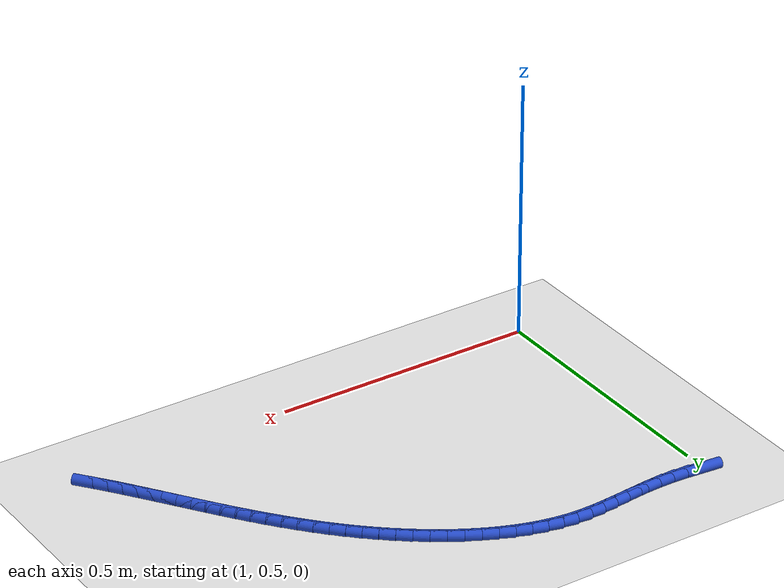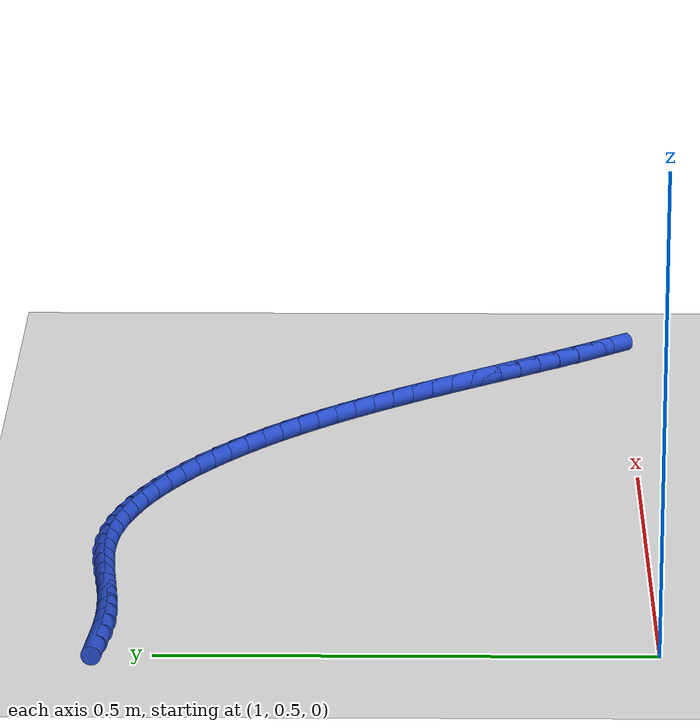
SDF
<sdf version="1.6">
 <world name="default">
  <model name="ground_plane">
   <static>1</static>
   <link name="link">
    <collision name="collision">
     <geometry><plane><normal>0 0 1</normal><size>100 100</size></plane></geometry>
     <surface><friction><ode><mu>100</mu><mu2>50</mu2></ode></friction></surface>
    </collision>
    <visual name="visual">
     <cast_shadows>0</cast_shadows>
     <geometry><plane><normal>0 0 1</normal><size>100 100</size></plane></geometry>
     <material>
      <script><uri>file://media/materials/scripts/gazebo.material</uri><name>Gazebo/WhiteGlow</name></script>
     </material>
    </visual>
   </link>
  </model>
  <model name="line">
   <link name="link_59">
    <pose>1.0150206106187034 1.0552837076525767 0.01 0 1.57 -0.09621631643686032</pose>
    <collision name="collision">
     <geometry><cylinder><radius>0.01</radius><length>0.08</length></cylinder></geometry>
    </collision>
    <visual name="visual">
     <material>
      <script><name>Gazebo/Blue</name><uri>file://media/materials/scripts/gazebo.material</uri></script>
     </material>
     <geometry><cylinder><radius>0.01</radius><length>0.08</length></cylinder></geometry>
    </visual>
   </link>
   <link name="link_60">
    <pose>1.0439334622546377 1.05249320314544 0.01 0 1.57 -0.05836338524251697</pose>
    <collision name="collision">
     <geometry><cylinder><radius>0.01</radius><length>0.08</length></cylinder></geometry>
    </collision>
    <visual name="visual">
     <material>
      <script><name>Gazebo/Blue</name><uri>file://media/materials/scripts/gazebo.material</uri></script>
     </material>
     <geometry><cylinder><radius>0.01</radius><length>0.08</length></cylinder></geometry>
    </visual>
   </link>
   <link name="link_61">
    <pose>1.0726639845456978 1.0508144861090285 0.01 0 1.57 -0.005816245046619494</pose>
    <collision name="collision">
     <geometry><cylinder><radius>0.01</radius><length>0.08</length></cylinder></geometry>
    </collision>
    <visual name="visual">
     <material>
      <script><name>Gazebo/Blue</name><uri>file://media/materials/scripts/gazebo.material</uri></script>
     </material>
     <geometry><cylinder><radius>0.01</radius><length>0.08</length></cylinder></geometry>
    </visual>
   </link>
   <link name="link_62">
    <pose>1.1010866167589104 1.050649171251073 0.01 0 1.57 0.04379226199682296</pose>
    <collision name="collision">
     <geometry><cylinder><radius>0.01</radius><length>0.08</length></cylinder></geometry>
    </collision>
    <visual name="visual">
     <material>
      <script><name>Gazebo/Blue</name><uri>file://media/materials/scripts/gazebo.material</uri></script>
     </material>
     <geometry><cylinder><radius>0.01</radius><length>0.08</length></cylinder></geometry>
    </visual>
   </link>
   <link name="link_63">
    <pose>1.1291666104742513 1.0518796443782632 0.01 0 1.57 0.07562860127090518</pose>
    <collision name="collision">
     <geometry><cylinder><radius>0.01</radius><length>0.08</length></cylinder></geometry>
    </collision>
    <visual name="visual">
     <material>
      <script><name>Gazebo/Blue</name><uri>file://media/materials/scripts/gazebo.material</uri></script>
     </material>
     <geometry><cylinder><radius>0.01</radius><length>0.08</length></cylinder></geometry>
    </visual>
   </link>
   <link name="link_64">
    <pose>1.1569399072762656 1.0539841137998145 0.01 0 1.57 0.08869842491510196</pose>
    <collision name="collision">
     <geometry><cylinder><radius>0.01</radius><length>0.08</length></cylinder></geometry>
    </collision>
    <visual name="visual">
     <material>
      <script><name>Gazebo/Blue</name><uri>file://media/materials/scripts/gazebo.material</uri></script>
     </material>
     <geometry><cylinder><radius>0.01</radius><length>0.08</length></cylinder></geometry>
    </visual>
   </link>
   <link name="link_65">
    <pose>1.1844443129211908 1.0564301292282445 0.01 0 1.57 0.08249794219095717</pose>
    <collision name="collision">
     <geometry><cylinder><radius>0.01</radius><length>0.08</length></cylinder></geometry>
    </collision>
    <visual name="visual">
     <material>
      <script><name>Gazebo/Blue</name><uri>file://media/materials/scripts/gazebo.material</uri></script>
     </material>
     <geometry><cylinder><radius>0.01</radius><length>0.08</length></cylinder></geometry>
    </visual>
   </link>
   <link name="link_66">
    <pose>1.2117176331652648 1.0586852403760707 0.01 0 1.57 0.056503833117821985</pose>
    <collision name="collision">
     <geometry><cylinder><radius>0.01</radius><length>0.08</length></cylinder></geometry>
    </collision>
    <visual name="visual">
     <material>
      <script><name>Gazebo/Blue</name><uri>file://media/materials/scripts/gazebo.material</uri></script>
     </material>
     <geometry><cylinder><radius>0.01</radius><length>0.08</length></cylinder></geometry>
    </visual>
   </link>
   <link name="link_67">
    <pose>1.2387976737647237 1.0602169969558104 0.01 0 1.57 0.010248709494177286</pose>
    <collision name="collision">
     <geometry><cylinder><radius>0.01</radius><length>0.08</length></cylinder></geometry>
    </collision>
    <visual name="visual">
     <material>
      <script><name>Gazebo/Blue</name><uri>file://media/materials/scripts/gazebo.material</uri></script>
     </material>
     <geometry><cylinder><radius>0.01</radius><length>0.08</length></cylinder></geometry>
    </visual>
   </link>
   <link name="link_68">
    <pose>1.2657222404758064 1.0604929486799826 0.01 0 1.57 -0.05632960257344808</pose>
    <collision name="collision">
     <geometry><cylinder><radius>0.01</radius><length>0.08</length></cylinder></geometry>
    </collision>
    <visual name="visual">
     <material>
      <script><name>Gazebo/Blue</name><uri>file://media/materials/scripts/gazebo.material</uri></script>
     </material>
     <geometry><cylinder><radius>0.01</radius><length>0.08</length></cylinder></geometry>
    </visual>
   </link>
   <link name="link_69">
    <pose>1.2925290333305801 1.0589813335568157 0.01 0 1.57 -0.13575664744811794</pose>
    <collision name="collision">
     <geometry><cylinder><radius>0.01</radius><length>0.08</length></cylinder></geometry>
    </collision>
    <visual name="visual">
     <material>
      <script><name>Gazebo/Blue</name><uri>file://media/materials/scripts/gazebo.material</uri></script>
     </material>
     <geometry><cylinder><radius>0.01</radius><length>0.08</length></cylinder></geometry>
    </visual>
   </link>
   <link name="link_70">
    <pose>1.3192274863995046 1.055334409391231 0.01 0 1.57 -0.2115682908477505</pose>
    <collision name="collision">
     <geometry><cylinder><radius>0.01</radius><length>0.08</length></cylinder></geometry>
    </collision>
    <visual name="visual">
     <material>
      <script><name>Gazebo/Blue</name><uri>file://media/materials/scripts/gazebo.material</uri></script>
     </material>
     <geometry><cylinder><radius>0.01</radius><length>0.08</length></cylinder></geometry>
    </visual>
   </link>
   <link name="link_71">
    <pose>1.3457608187836796 1.0496355130849007 0.01 0 1.57 -0.2814968620393931</pose>
    <collision name="collision">
     <geometry><cylinder><radius>0.01</radius><length>0.08</length></cylinder></geometry>
    </collision>
    <visual name="visual">
     <material>
      <script><name>Gazebo/Blue</name><uri>file://media/materials/scripts/gazebo.material</uri></script>
     </material>
     <geometry><cylinder><radius>0.01</radius><length>0.08</length></cylinder></geometry>
    </visual>
   </link>
   <link name="link_72">
    <pose>1.3720627808383283 1.0420296258845778 0.01 0 1.57 -0.34577118275028335</pose>
    <collision name="collision">
     <geometry><cylinder><radius>0.01</radius><length>0.08</length></cylinder></geometry>
    </collision>
    <visual name="visual">
     <material>
      <script><name>Gazebo/Blue</name><uri>file://media/materials/scripts/gazebo.material</uri></script>
     </material>
     <geometry><cylinder><radius>0.01</radius><length>0.08</length></cylinder></geometry>
    </visual>
   </link>
   <link name="link_73">
    <pose>1.3980671229186736 1.0326617290370155 0.01 0 1.57 -0.4047649698173029</pose>
    <collision name="collision">
     <geometry><cylinder><radius>0.01</radius><length>0.08</length></cylinder></geometry>
    </collision>
    <visual name="visual">
     <material>
      <script><name>Gazebo/Blue</name><uri>file://media/materials/scripts/gazebo.material</uri></script>
     </material>
     <geometry><cylinder><radius>0.01</radius><length>0.08</length></cylinder></geometry>
    </visual>
   </link>
   <link name="link_74">
    <pose>1.423707595379938 1.0216768037889663 0.01 0 1.57 -0.4589335959532262</pose>
    <collision name="collision">
     <geometry><cylinder><radius>0.01</radius><length>0.08</length></cylinder></geometry>
    </collision>
    <visual name="visual">
     <material>
      <script><name>Gazebo/Blue</name><uri>file://media/materials/scripts/gazebo.material</uri></script>
     </material>
     <geometry><cylinder><radius>0.01</radius><length>0.08</length></cylinder></geometry>
    </visual>
   </link>
   <link name="link_75">
    <pose>1.4489179485773436 1.0092198313871834 0.01 0 1.57 -0.5087680752783025</pose>
    <collision name="collision">
     <geometry><cylinder><radius>0.01</radius><length>0.08</length></cylinder></geometry>
    </collision>
    <visual name="visual">
     <material>
      <script><name>Gazebo/Blue</name><uri>file://media/materials/scripts/gazebo.material</uri></script>
     </material>
     <geometry><cylinder><radius>0.01</radius><length>0.08</length></cylinder></geometry>
    </visual>
   </link>
   <link name="link_76">
    <pose>1.4736319328661136 0.9954357930784198 0.01 0 1.57 -0.5547646862628934</pose>
    <collision name="collision">
     <geometry><cylinder><radius>0.01</radius><length>0.08</length></cylinder></geometry>
    </collision>
    <visual name="visual">
     <material>
      <script><name>Gazebo/Blue</name><uri>file://media/materials/scripts/gazebo.material</uri></script>
     </material>
     <geometry><cylinder><radius>0.01</radius><length>0.08</length></cylinder></geometry>
    </visual>
   </link>
   <link name="link_77">
    <pose>1.49778329860147 0.980469670109428 0.01 0 1.57 -0.5974070934406732</pose>
    <collision name="collision">
     <geometry><cylinder><radius>0.01</radius><length>0.08</length></cylinder></geometry>
    </collision>
    <visual name="visual">
     <material>
      <script><name>Gazebo/Blue</name><uri>file://media/materials/scripts/gazebo.material</uri></script>
     </material>
     <geometry><cylinder><radius>0.01</radius><length>0.08</length></cylinder></geometry>
    </visual>
   </link>
   <link name="link_78">
    <pose>1.5213057961386367 0.9644664437269611 0.01 0 1.57 -0.6371577218860998</pose>
    <collision name="collision">
     <geometry><cylinder><radius>0.01</radius><length>0.08</length></cylinder></geometry>
    </collision>
    <visual name="visual">
     <material>
      <script><name>Gazebo/Blue</name><uri>file://media/materials/scripts/gazebo.material</uri></script>
     </material>
     <geometry><cylinder><radius>0.01</radius><length>0.08</length></cylinder></geometry>
    </visual>
   </link>
   <link name="link_79">
    <pose>1.544133175832835 0.947571095177772 0.01 0 1.57 -0.6744556936210766</pose>
    <collision name="collision">
     <geometry><cylinder><radius>0.01</radius><length>0.08</length></cylinder></geometry>
    </collision>
    <visual name="visual">
     <material>
      <script><name>Gazebo/Blue</name><uri>file://media/materials/scripts/gazebo.material</uri></script>
     </material>
     <geometry><cylinder><radius>0.01</radius><length>0.08</length></cylinder></geometry>
    </visual>
   </link>
   <link name="link_80">
    <pose>1.5661991880434134 0.9299286057051075 0.01 0 1.57 -0.7097141701352017</pose>
    <collision name="collision">
     <geometry><cylinder><radius>0.01</radius><length>0.08</length></cylinder></geometry>
    </collision>
    <visual name="visual">
     <material>
      <script><name>Gazebo/Blue</name><uri>file://media/materials/scripts/gazebo.material</uri></script>
     </material>
     <geometry><cylinder><radius>0.01</radius><length>0.08</length></cylinder></geometry>
    </visual>
   </link>
   <link name="link_81">
    <pose>1.5874584140493833 0.911666254750063 0.01 0 1.57 -0.7430870660620886</pose>
    <collision name="collision">
     <geometry><cylinder><radius>0.01</radius><length>0.08</length></cylinder></geometry>
    </collision>
    <visual name="visual">
     <material>
      <script><name>Gazebo/Blue</name><uri>file://media/materials/scripts/gazebo.material</uri></script>
     </material>
     <geometry><cylinder><radius>0.01</radius><length>0.08</length></cylinder></geometry>
    </visual>
   </link>
   <link name="link_82">
    <pose>1.6079473060088687 0.8928417491123195 0.01 0 1.57 -0.7744306908484367</pose>
    <collision name="collision">
     <geometry><cylinder><radius>0.01</radius><length>0.08</length></cylinder></geometry>
    </collision>
    <visual name="visual">
     <material>
      <script><name>Gazebo/Blue</name><uri>file://media/materials/scripts/gazebo.material</uri></script>
     </material>
     <geometry><cylinder><radius>0.01</radius><length>0.08</length></cylinder></geometry>
    </visual>
   </link>
   <link name="link_83">
    <pose>1.6277224269105048 0.873495705710334 0.01 0 1.57 -0.8036026909010632</pose>
    <collision name="collision">
     <geometry><cylinder><radius>0.01</radius><length>0.08</length></cylinder></geometry>
    </collision>
    <visual name="visual">
     <material>
      <script><name>Gazebo/Blue</name><uri>file://media/materials/scripts/gazebo.material</uri></script>
     </material>
     <geometry><cylinder><radius>0.01</radius><length>0.08</length></cylinder></geometry>
    </visual>
   </link>
   <link name="link_84">
    <pose>1.6468403397429277 0.8536687414625633 0.01 0 1.57 -0.8304886669749341</pose>
    <collision name="collision">
     <geometry><cylinder><radius>0.01</radius><length>0.08</length></cylinder></geometry>
    </collision>
    <visual name="visual">
     <material>
      <script><name>Gazebo/Blue</name><uri>file://media/materials/scripts/gazebo.material</uri></script>
     </material>
     <geometry><cylinder><radius>0.01</radius><length>0.08</length></cylinder></geometry>
    </visual>
   </link>
   <link name="link_85">
    <pose>1.6653576074947722 0.8334014732874644 0.01 0 1.57 -0.8549998306771901</pose>
    <collision name="collision">
     <geometry><cylinder><radius>0.01</radius><length>0.08</length></cylinder></geometry>
    </collision>
    <visual name="visual">
     <material>
      <script><name>Gazebo/Blue</name><uri>file://media/materials/scripts/gazebo.material</uri></script>
     </material>
     <geometry><cylinder><radius>0.01</radius><length>0.08</length></cylinder></geometry>
    </visual>
   </link>
   <link name="link_86">
    <pose>1.683330793154674 0.8127345181034947 0.01 0 1.57 -0.8770699544317554</pose>
    <collision name="collision">
     <geometry><cylinder><radius>0.01</radius><length>0.08</length></cylinder></geometry>
    </collision>
    <visual name="visual">
     <material>
      <script><name>Gazebo/Blue</name><uri>file://media/materials/scripts/gazebo.material</uri></script>
     </material>
     <geometry><cylinder><radius>0.01</radius><length>0.08</length></cylinder></geometry>
    </visual>
   </link>
   <link name="link_87">
    <pose>1.7008164597112685 0.791708492829111 0.01 0 1.57 -0.896651936687607</pose>
    <collision name="collision">
     <geometry><cylinder><radius>0.01</radius><length>0.08</length></cylinder></geometry>
    </collision>
    <visual name="visual">
     <material>
      <script><name>Gazebo/Blue</name><uri>file://media/materials/scripts/gazebo.material</uri></script>
     </material>
     <geometry><cylinder><radius>0.01</radius><length>0.08</length></cylinder></geometry>
    </visual>
   </link>
   <link name="link_88">
    <pose>1.717871170153192 0.7703640143827708 0.01 0 1.57 -0.9137142592741855</pose>
    <collision name="collision">
     <geometry><cylinder><radius>0.01</radius><length>0.08</length></cylinder></geometry>
    </collision>
    <visual name="visual">
     <material>
      <script><name>Gazebo/Blue</name><uri>file://media/materials/scripts/gazebo.material</uri></script>
     </material>
     <geometry><cylinder><radius>0.01</radius><length>0.08</length></cylinder></geometry>
    </visual>
   </link>
   <link name="link_89">
    <pose>1.7345514874690784 0.7487416996829299 0.01 0 1.57 -0.928211896223714</pose>
    <collision name="collision">
     <geometry><cylinder><radius>0.01</radius><length>0.08</length></cylinder></geometry>
    </collision>
    <visual name="visual">
     <material>
      <script><name>Gazebo/Blue</name><uri>file://media/materials/scripts/gazebo.material</uri></script>
     </material>
     <geometry><cylinder><radius>0.01</radius><length>0.08</length></cylinder></geometry>
    </visual>
   </link>
   <link name="link_90">
    <pose>1.750914754425457 0.7268822931563974 0.01 0 1.57 -0.9398255759516793</pose>
    <collision name="collision">
     <geometry><cylinder><radius>0.01</radius><length>0.08</length></cylinder></geometry>
    </collision>
    <visual name="visual">
     <material>
      <script><name>Gazebo/Blue</name><uri>file://media/materials/scripts/gazebo.material</uri></script>
     </material>
     <geometry><cylinder><radius>0.01</radius><length>0.08</length></cylinder></geometry>
    </visual>
   </link>
   <link name="link_91">
    <pose>1.7670276321875196 0.7048280629634093 0.01 0 1.57 -0.948343360154536</pose>
    <collision name="collision">
     <geometry><cylinder><radius>0.01</radius><length>0.08</length></cylinder></geometry>
    </collision>
    <visual name="visual">
     <material>
      <script><name>Gazebo/Blue</name><uri>file://media/materials/scripts/gazebo.material</uri></script>
     </material>
     <geometry><cylinder><radius>0.01</radius><length>0.08</length></cylinder></geometry>
    </visual>
   </link>
   <link name="link_92">
    <pose>1.782962916383738 0.6826222803643174 0.01 0 1.57 -0.9537593527931839</pose>
    <collision name="collision">
     <geometry><cylinder><radius>0.01</radius><length>0.08</length></cylinder></geometry>
    </collision>
    <visual name="visual">
     <material>
      <script><name>Gazebo/Blue</name><uri>file://media/materials/scripts/gazebo.material</uri></script>
     </material>
     <geometry><cylinder><radius>0.01</radius><length>0.08</length></cylinder></geometry>
    </visual>
   </link>
   <link name="link_93">
    <pose>1.7987935105352801 0.660308234261958 0.01 0 1.57 -0.9560781474358409</pose>
    <collision name="collision">
     <geometry><cylinder><radius>0.01</radius><length>0.08</length></cylinder></geometry>
    </collision>
    <visual name="visual">
     <material>
      <script><name>Gazebo/Blue</name><uri>file://media/materials/scripts/gazebo.material</uri></script>
     </material>
     <geometry><cylinder><radius>0.01</radius><length>0.08</length></cylinder></geometry>
    </visual>
   </link>
   <link name="link_94">
    <pose>1.8145923181633117 0.637929213559168 0.01 0 1.57 -0.9553096771093699</pose>
    <collision name="collision">
     <geometry><cylinder><radius>0.01</radius><length>0.08</length></cylinder></geometry>
    </collision>
    <visual name="visual">
     <material>
      <script><name>Gazebo/Blue</name><uri>file://media/materials/scripts/gazebo.material</uri></script>
     </material>
     <geometry><cylinder><radius>0.01</radius><length>0.08</length></cylinder></geometry>
    </visual>
   </link>
   <link name="link_95">
    <pose>1.8304322427890003 0.6155285071587838 0.01 0 1.57 -0.9514684917912469</pose>
    <collision name="collision">
     <geometry><cylinder><radius>0.01</radius><length>0.08</length></cylinder></geometry>
    </collision>
    <visual name="visual">
     <material>
      <script><name>Gazebo/Blue</name><uri>file://media/materials/scripts/gazebo.material</uri></script>
     </material>
     <geometry><cylinder><radius>0.01</radius><length>0.08</length></cylinder></geometry>
    </visual>
   </link>
   <link name="link_96">
    <pose>1.8463861879335124 0.5931494039636414 0.01 0 1.57 -0.944573902057694</pose>
    <collision name="collision">
     <geometry><cylinder><radius>0.01</radius><length>0.08</length></cylinder></geometry>
    </collision>
    <visual name="visual">
     <material>
      <script><name>Gazebo/Blue</name><uri>file://media/materials/scripts/gazebo.material</uri></script>
     </material>
     <geometry><cylinder><radius>0.01</radius><length>0.08</length></cylinder></geometry>
    </visual>
   </link>
   <link name="link_97">
    <pose>1.8625270571180146 0.5708351928765777 0.01 0 1.57 -0.9346509581187428</pose>
    <collision name="collision">
     <geometry><cylinder><radius>0.01</radius><length>0.08</length></cylinder></geometry>
    </collision>
    <visual name="visual">
     <material>
      <script><name>Gazebo/Blue</name><uri>file://media/materials/scripts/gazebo.material</uri></script>
     </material>
     <geometry><cylinder><radius>0.01</radius><length>0.08</length></cylinder></geometry>
    </visual>
   </link>
   <link name="link_98">
    <pose>1.8789277538636748 0.5486291628004295 0.01 0 1.57 -0.9217322134387544</pose>
    <collision name="collision">
     <geometry><cylinder><radius>0.01</radius><length>0.08</length></cylinder></geometry>
    </collision>
    <visual name="visual">
     <material>
      <script><name>Gazebo/Blue</name><uri>file://media/materials/scripts/gazebo.material</uri></script>
     </material>
     <geometry><cylinder><radius>0.01</radius><length>0.08</length></cylinder></geometry>
    </visual>
   </link>
   <link name="link_99">
    <pose>1.8956611816916582 0.5265746026380322 0.01 0 1.57 -0.9058967996957161</pose>
    <collision name="collision">
     <geometry><cylinder><radius>0.01</radius><length>0.08</length></cylinder></geometry>
    </collision>
    <visual name="visual">
     <material>
      <script><name>Gazebo/Blue</name><uri>file://media/materials/scripts/gazebo.material</uri></script>
     </material>
     <geometry><cylinder><radius>0.01</radius><length>0.08</length></cylinder></geometry>
    </visual>
   </link>
  </model>
 </world>
</sdf>
